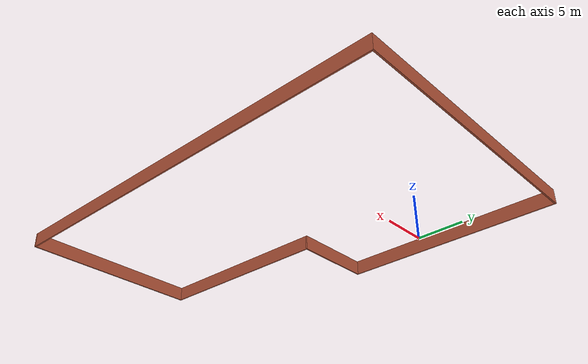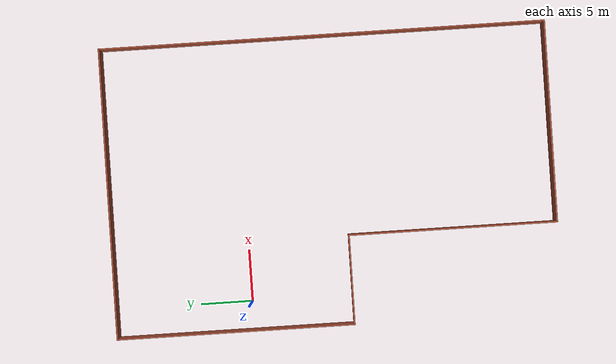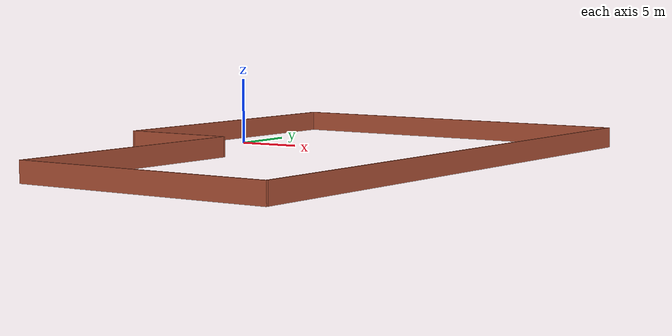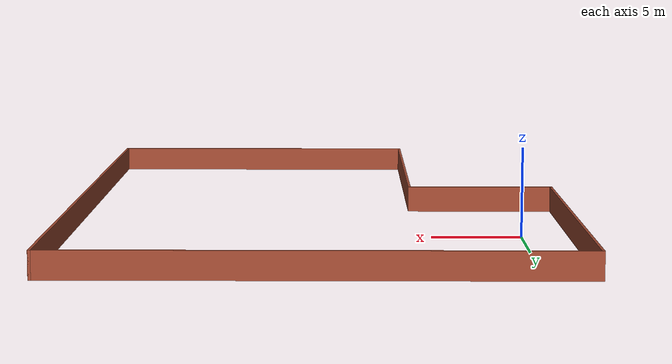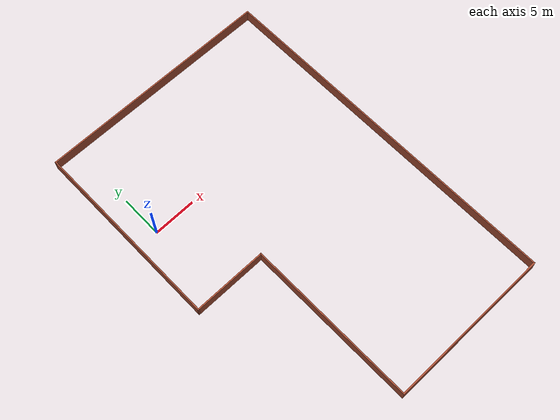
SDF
<?xml version='1.0'?>
<sdf version='1.6'>
  <model name='building'>
    <pose frame=''>11.258 -8.372 0 0 -0 0</pose>
    <link name='Wall_2'>
      <collision name='Wall_2_Collision'>
        <geometry>
          <box>
            <size>28.1 0.15 1.5</size>
          </box>
        </geometry>
        <pose frame=''>0 0 0.75 0 -0 0</pose>
      </collision>
      <visual name='Wall_2_Visual'>
        <pose frame=''>0 0 0.75 0 -0 0</pose>
        <geometry>
          <box>
            <size>28.1 0.15 1.5</size>
          </box>
        </geometry>
        <material>
          <script>
            <uri>file://media/materials/scripts/gazebo.material</uri>
            <name>Gazebo/Bricks</name>
          </script>
          <ambient>1 1 1 1</ambient>
        </material>
        <meta>
          <layer>0</layer>
        </meta>
      </visual>
      <pose frame=''>0 21.454 0 0 -0 0</pose>
    </link>
    <link name='Wall_3'>
      <collision name='Wall_3_Collision'>
        <geometry>
          <box>
            <size>43.058 0.15 1.5</size>
          </box>
        </geometry>
        <pose frame=''>0 0 0.75 0 -0 0</pose>
      </collision>
      <visual name='Wall_3_Visual'>
        <pose frame=''>0 0 0.75 0 -0 0</pose>
        <geometry>
          <box>
            <size>43.058 0.15 1.5</size>
          </box>
        </geometry>
        <material>
          <script>
            <uri>file://media/materials/scripts/gazebo.material</uri>
            <name>Gazebo/Bricks</name>
          </script>
          <ambient>1 1 1 1</ambient>
        </material>
        <meta>
          <layer>0</layer>
        </meta>
      </visual>
      <pose frame=''>13.975 0 0 0 0 -1.5708</pose>
    </link>
    <link name='Wall_4'>
      <collision name='Wall_4_Collision'>
        <geometry>
          <box>
            <size>19.5189 0.15 1.5</size>
          </box>
        </geometry>
        <pose frame=''>0 0 0.75 0 -0 0</pose>
      </collision>
      <visual name='Wall_4_Visual'>
        <pose frame=''>0 0 0.75 0 -0 0</pose>
        <geometry>
          <box>
            <size>19.5189 0.15 1.5</size>
          </box>
        </geometry>
        <material>
          <script>
            <uri>file://media/materials/scripts/gazebo.material</uri>
            <name>Gazebo/Bricks</name>
          </script>
          <ambient>1 1 1 1</ambient>
        </material>
        <meta>
          <layer>0</layer>
        </meta>
      </visual>
      <pose frame=''>4.2905 -21.454 0 0 -0 3.14159</pose>
    </link>
    <link name='Wall_5'>
      <collision name='Wall_5_Collision'>
        <geometry>
          <box>
            <size>20.2138 0.15 1.5</size>
          </box>
        </geometry>
        <pose frame=''>0 0 0.75 0 -0 0</pose>
      </collision>
      <visual name='Wall_5_Visual'>
        <pose frame=''>0 0 0.75 0 -0 0</pose>
        <geometry>
          <box>
            <size>20.2138 0.15 1.5</size>
          </box>
        </geometry>
        <material>
          <script>
            <uri>file://media/materials/scripts/gazebo.material</uri>
            <name>Gazebo/Bricks</name>
          </script>
          <ambient>1 1 1 1</ambient>
        </material>
        <meta>
          <layer>0</layer>
        </meta>
      </visual>
      <pose frame=''>-5.394 -11.422 0 0 -0 1.5708</pose>
    </link>
    <link name='Wall_6'>
      <collision name='Wall_6_Collision'>
        <geometry>
          <box>
            <size>8.731 0.15 1.5</size>
          </box>
        </geometry>
        <pose frame=''>0 0 0.75 0 -0 0</pose>
      </collision>
      <visual name='Wall_6_Visual'>
        <pose frame=''>0 0 0.75 0 -0 0</pose>
        <geometry>
          <box>
            <size>8.731 0.15 1.5</size>
          </box>
        </geometry>
        <material>
          <script>
            <uri>file://media/materials/scripts/gazebo.material</uri>
            <name>Gazebo/Bricks</name>
          </script>
          <ambient>1 1 1 1</ambient>
        </material>
        <meta>
          <layer>0</layer>
        </meta>
      </visual>
      <pose frame=''>-9.6845 -1.39 0 0 -0 3.14159</pose>
    </link>
    <link name='Wall_7'>
      <collision name='Wall_7_Collision'>
        <geometry>
          <box>
            <size>22.9 0.15 1.5</size>
          </box>
        </geometry>
        <pose frame=''>0 0 0.75 0 -0 0</pose>
      </collision>
      <visual name='Wall_7_Visual'>
        <pose frame=''>0 0 0.75 0 -0 0</pose>
        <geometry>
          <box>
            <size>22.9 0.15 1.5</size>
          </box>
        </geometry>
        <material>
          <script>
            <uri>file://media/materials/scripts/gazebo.material</uri>
            <name>Gazebo/Bricks</name>
          </script>
          <ambient>1 1 1 1</ambient>
        </material>
        <meta>
          <layer>0</layer>
        </meta>
      </visual>
      <pose frame=''>-13.975 9.985 0 0 -0 1.5708</pose>
    </link>
    <static>1</static>
  </model>
</sdf>
